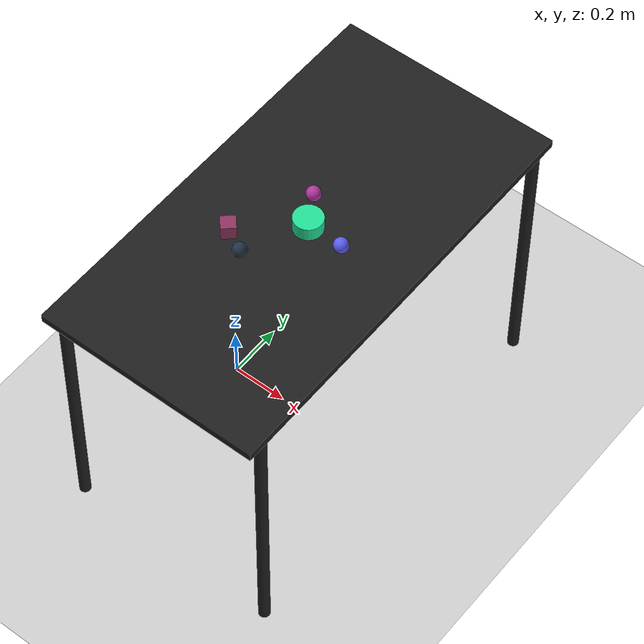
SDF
<?xml version="1.0" ?>
<sdf version="1.6">
  <world name="arm_world">
    <plugin filename="gz-sim-physics-system" name="gz::sim::systems::Physics">
      <engine>
        <filename>libgz-physics-bullet-featherstone-plugin.so</filename>
      </engine>
    </plugin>
    <plugin filename="gz-sim-user-commands-system" name="gz::sim::systems::UserCommands"/>
    <plugin filename="gz-sim-scene-broadcaster-system" name="gz::sim::systems::SceneBroadcaster"/>
    <plugin filename="gz-sim-sensors-system" name="gz::sim::systems::Sensors">
      <render_engine>ogre2</render_engine>
    </plugin>
    <gravity>0.0 0.0 -9.8</gravity>
    <scene>
      <shadows>false</shadows>
    </scene>
    <gui>
      <camera name="user_camera">
        <pose>0.75 -0.75 1.4 0 0.29 2.21</pose>
      </camera>
    </gui>
    <include>
      <uri>https://fuel.gazebosim.org/1.0/OpenRobotics/models/Sun</uri>
    </include>
    <model name="table">
      <static>true</static>
      <include>
        <uri>model://table</uri>
      </include>
      <pose>0.29 0 0 0 0 1.5708</pose>
    </model>
    <model name="ground_plane">
      <static>true</static>
      <link name="link">
        <collision name="collision">
          <geometry>
            <plane>
              <normal>0 0 1</normal>
            </plane>
          </geometry>
          <surface>
            <friction>
              <ode>
                <mu>1.0</mu>
                <mu2>1.0</mu2>
              </ode>
            </friction>
          </surface>
        </collision>
        <visual name="visual">
          <geometry>
            <plane>
              <normal>0 0 1</normal>
              <size>100 100</size>
            </plane>
          </geometry>
          <material>
            <ambient>0.8 0.8 0.8 1</ambient>
            <diffuse>0.8 0.8 0.8 1</diffuse>
            <specular>0.8 0.8 0.8 1</specular>
          </material>
        </visual>
      </link>
    </model>
    <model name="sphere_m_0">
      <pose>0.214 -0.213 1.05 0 0 3.78</pose>
      <link name="sphere_m_0_link">
        <inertial>
          <mass>0.05</mass>
          <inertia>
            <ixx>2.04e-7</ixx>
            <iyy>2.04e-7</iyy>
            <izz>3.9e-8</izz>
            <ixy>0</ixy>
            <ixz>0</ixz>
            <iyz>0</iyz>
          </inertia>
        </inertial>
        <collision name="sphere_m_0_collision">
          <geometry>
            <sphere>
              <radius>0.025</radius>
            </sphere>
          </geometry>
          <surface>
            <friction>
              <ode>
                <mu>0.8</mu>
                <mu2>0.8</mu2>
                <fdir1>0 0 1</fdir1>
                <slip1>0.001</slip1>
                <slip2>0.001</slip2>
              </ode>
              <torsional>
                <coefficient>0.1</coefficient>
                <surface_radius>0.015</surface_radius>
                <use_patch_radius>true</use_patch_radius>
              </torsional>
            </friction>
            <contact>
              <ode>
                <kp>1e5</kp>
                <kd>10</kd>
                <max_vel>0.1</max_vel>
                <min_depth>0.001</min_depth>
                <soft_cfm>0.01</soft_cfm>
                <soft_erp>0.2</soft_erp>
              </ode>
            </contact>
            <bounce>
              <restitution_coefficient>0.2</restitution_coefficient>
              <threshold>0.01</threshold>
            </bounce>
          </surface>
        </collision>
        <visual name="sphere_m_0_visual">
          <geometry>
            <sphere>
              <radius>0.025</radius>
            </sphere>
          </geometry>
          <material>
            <ambient>0.13 0.19 0.27 1</ambient>
            <diffuse>0.13 0.19 0.27 1</diffuse>
          </material>
        </visual>
        <velocity_decay>
          <linear>1</linear>
          <angular>1</angular>
        </velocity_decay>
      </link>
    </model>
    <model name="sphere_m_1">
      <pose>0.254 0.096 1.05 0 0 3.85</pose>
      <link name="sphere_m_1_link">
        <inertial>
          <mass>0.05</mass>
          <inertia>
            <ixx>2.04e-7</ixx>
            <iyy>2.04e-7</iyy>
            <izz>3.9e-8</izz>
            <ixy>0</ixy>
            <ixz>0</ixz>
            <iyz>0</iyz>
          </inertia>
        </inertial>
        <collision name="sphere_m_1_collision">
          <geometry>
            <sphere>
              <radius>0.025</radius>
            </sphere>
          </geometry>
          <surface>
            <friction>
              <ode>
                <mu>0.8</mu>
                <mu2>0.8</mu2>
                <fdir1>0 0 1</fdir1>
                <slip1>0.001</slip1>
                <slip2>0.001</slip2>
              </ode>
              <torsional>
                <coefficient>0.1</coefficient>
                <surface_radius>0.015</surface_radius>
                <use_patch_radius>true</use_patch_radius>
              </torsional>
            </friction>
            <contact>
              <ode>
                <kp>1e5</kp>
                <kd>10</kd>
                <max_vel>0.1</max_vel>
                <min_depth>0.001</min_depth>
                <soft_cfm>0.01</soft_cfm>
                <soft_erp>0.2</soft_erp>
              </ode>
            </contact>
            <bounce>
              <restitution_coefficient>0.2</restitution_coefficient>
              <threshold>0.01</threshold>
            </bounce>
          </surface>
        </collision>
        <visual name="sphere_m_1_visual">
          <geometry>
            <sphere>
              <radius>0.025</radius>
            </sphere>
          </geometry>
          <material>
            <ambient>0.69 0.21 0.62 1</ambient>
            <diffuse>0.69 0.21 0.62 1</diffuse>
          </material>
        </visual>
        <velocity_decay>
          <linear>1</linear>
          <angular>1</angular>
        </velocity_decay>
      </link>
    </model>
    <model name="cube_m_2">
      <pose>0.132 -0.168 1.05 0 0 2.3</pose>
      <link name="cube_m_2_link">
        <inertial>
          <mass>0.05</mass>
          <inertia>
            <ixx>2.04e-7</ixx>
            <iyy>2.04e-7</iyy>
            <izz>3.9e-8</izz>
            <ixy>0</ixy>
            <ixz>0</ixz>
            <iyz>0</iyz>
          </inertia>
        </inertial>
        <collision name="cube_m_2_collision">
          <geometry>
            <box>
              <size>0.05 0.05 0.05</size>
            </box>
          </geometry>
          <surface>
            <friction>
              <ode>
                <mu>0.8</mu>
                <mu2>0.8</mu2>
                <fdir1>0 0 1</fdir1>
                <slip1>0.001</slip1>
                <slip2>0.001</slip2>
              </ode>
              <torsional>
                <coefficient>0.1</coefficient>
                <surface_radius>0.015</surface_radius>
                <use_patch_radius>true</use_patch_radius>
              </torsional>
            </friction>
            <contact>
              <ode>
                <kp>1e5</kp>
                <kd>10</kd>
                <max_vel>0.1</max_vel>
                <min_depth>0.001</min_depth>
                <soft_cfm>0.01</soft_cfm>
                <soft_erp>0.2</soft_erp>
              </ode>
            </contact>
            <bounce>
              <restitution_coefficient>0.2</restitution_coefficient>
              <threshold>0.01</threshold>
            </bounce>
          </surface>
        </collision>
        <visual name="cube_m_2_visual">
          <geometry>
            <box>
              <size>0.05 0.05 0.05</size>
            </box>
          </geometry>
          <material>
            <ambient>0.56 0.2 0.37 1</ambient>
            <diffuse>0.56 0.2 0.37 1</diffuse>
          </material>
        </visual>
        <velocity_decay>
          <linear>1</linear>
          <angular>1</angular>
        </velocity_decay>
      </link>
    </model>
    <model name="sphere_m_3">
      <pose>0.443 -0.01 1.05 0 0 5.93</pose>
      <link name="sphere_m_3_link">
        <inertial>
          <mass>0.05</mass>
          <inertia>
            <ixx>2.04e-7</ixx>
            <iyy>2.04e-7</iyy>
            <izz>3.9e-8</izz>
            <ixy>0</ixy>
            <ixz>0</ixz>
            <iyz>0</iyz>
          </inertia>
        </inertial>
        <collision name="sphere_m_3_collision">
          <geometry>
            <sphere>
              <radius>0.025</radius>
            </sphere>
          </geometry>
          <surface>
            <friction>
              <ode>
                <mu>0.8</mu>
                <mu2>0.8</mu2>
                <fdir1>0 0 1</fdir1>
                <slip1>0.001</slip1>
                <slip2>0.001</slip2>
              </ode>
              <torsional>
                <coefficient>0.1</coefficient>
                <surface_radius>0.015</surface_radius>
                <use_patch_radius>true</use_patch_radius>
              </torsional>
            </friction>
            <contact>
              <ode>
                <kp>1e5</kp>
                <kd>10</kd>
                <max_vel>0.1</max_vel>
                <min_depth>0.001</min_depth>
                <soft_cfm>0.01</soft_cfm>
                <soft_erp>0.2</soft_erp>
              </ode>
            </contact>
            <bounce>
              <restitution_coefficient>0.2</restitution_coefficient>
              <threshold>0.01</threshold>
            </bounce>
          </surface>
        </collision>
        <visual name="sphere_m_3_visual">
          <geometry>
            <sphere>
              <radius>0.025</radius>
            </sphere>
          </geometry>
          <material>
            <ambient>0.36 0.37 0.96 1</ambient>
            <diffuse>0.36 0.37 0.96 1</diffuse>
          </material>
        </visual>
        <velocity_decay>
          <linear>1</linear>
          <angular>1</angular>
        </velocity_decay>
      </link>
    </model>
    <model name="cylinder_l_4">
      <pose>0.311 -0.003 1.05 0 0 6.2</pose>
      <link name="cylinder_l_4_link">
        <inertial>
          <mass>0.05</mass>
          <inertia>
            <ixx>2.04e-7</ixx>
            <iyy>2.04e-7</iyy>
            <izz>3.9e-8</izz>
            <ixy>0</ixy>
            <ixz>0</ixz>
            <iyz>0</iyz>
          </inertia>
        </inertial>
        <collision name="cylinder_l_4_collision">
          <geometry>
            <cylinder>
              <radius>0.05</radius>
              <length>0.05</length>
            </cylinder>
          </geometry>
          <surface>
            <friction>
              <ode>
                <mu>0.8</mu>
                <mu2>0.8</mu2>
                <fdir1>0 0 1</fdir1>
                <slip1>0.001</slip1>
                <slip2>0.001</slip2>
              </ode>
              <torsional>
                <coefficient>0.1</coefficient>
                <surface_radius>0.015</surface_radius>
                <use_patch_radius>true</use_patch_radius>
              </torsional>
            </friction>
            <contact>
              <ode>
                <kp>1e5</kp>
                <kd>10</kd>
                <max_vel>0.1</max_vel>
                <min_depth>0.001</min_depth>
                <soft_cfm>0.01</soft_cfm>
                <soft_erp>0.2</soft_erp>
              </ode>
            </contact>
            <bounce>
              <restitution_coefficient>0.2</restitution_coefficient>
              <threshold>0.01</threshold>
            </bounce>
          </surface>
        </collision>
        <visual name="cylinder_l_4_visual">
          <geometry>
            <cylinder>
              <radius>0.05</radius>
              <length>0.05</length>
            </cylinder>
          </geometry>
          <material>
            <ambient>0.13 0.87 0.59 1</ambient>
            <diffuse>0.13 0.87 0.59 1</diffuse>
          </material>
        </visual>
        <velocity_decay>
          <linear>1</linear>
          <angular>1</angular>
        </velocity_decay>
      </link>
    </model>
  </world>
</sdf>

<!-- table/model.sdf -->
<sdf version="1.5">
  <model name="table">
    <static>true</static>
    <link name="link">
      <collision name="surface">
        <pose>0 0 1.0 0 0 0</pose>
        <geometry>
          <box>
            <size>1.5 0.8 0.03</size>
          </box>
        </geometry>
        <surface>
          <friction>
            <ode>
              <mu>0.6</mu>
              <mu2>0.6</mu2>
            </ode>
          </friction>
        </surface>
      </collision>
      <visual name="surface">
        <pose>0 0 1.0 0 0 0</pose>
        <geometry>
          <box>
            <size>1.5 0.8 0.03</size>
          </box>
        </geometry>
        <material>
          <script>
            <uri>file://media/materials/scripts/gazebo.material</uri>
            <name>Gazebo/Black</name>
          </script>
        </material>
      </visual>
      <collision name="front_left_leg">
        <pose>0.68 0.38 0.5 0 0 0</pose>
        <geometry>
          <cylinder>
            <radius>0.02</radius>
            <length>1.0</length>
          </cylinder>
        </geometry>
      </collision>
      <visual name="front_left_leg">
        <pose>0.68 0.38 0.5 0 0 0</pose>
        <geometry>
          <cylinder>
            <radius>0.02</radius>
            <length>1.0</length>
          </cylinder>
        </geometry>
        <material>
          <script>
            <uri>file://media/materials/scripts/gazebo.material</uri>
            <name>Gazebo/Black</name>
          </script>
        </material>
      </visual>
      <collision name="front_right_leg">
        <pose>0.68 -0.38 0.5 0 0 0</pose>
        <geometry>
          <cylinder>
            <radius>0.02</radius>
            <length>1.0</length>
          </cylinder>
        </geometry>
      </collision>
      <visual name="front_right_leg">
        <pose>0.68 -0.38 0.5 0 0 0</pose>
        <geometry>
          <cylinder>
            <radius>0.02</radius>
            <length>1.0</length>
          </cylinder>
        </geometry>
        <material>
          <script>
            <uri>file://media/materials/scripts/gazebo.material</uri>
            <name>Gazebo/Black</name>
          </script>
        </material>
      </visual>
      <collision name="back_right_leg">
        <pose>-0.68 -0.38 0.5 0 0 0</pose>
        <geometry>
          <cylinder>
            <radius>0.02</radius>
            <length>1.0</length>
          </cylinder>
        </geometry>
      </collision>
      <visual name="back_right_leg">
        <pose>-0.68 -0.38 0.5 0 0 0</pose>
        <geometry>
          <cylinder>
            <radius>0.02</radius>
            <length>1.0</length>
          </cylinder>
        </geometry>
        <material>
          <script>
            <uri>file://media/materials/scripts/gazebo.material</uri>
            <name>Gazebo/Black</name>
          </script>
        </material>
      </visual>
      <collision name="back_left_leg">
        <pose>-0.68 0.38 0.5 0 0 0</pose>
        <geometry>
          <cylinder>
            <radius>0.02</radius>
            <length>1.0</length>
          </cylinder>
        </geometry>
      </collision>
      <visual name="back_left_leg">
        <pose>-0.68 0.38 0.5 0 0 0</pose>
        <geometry>
          <cylinder>
            <radius>0.02</radius>
            <length>1.0</length>
          </cylinder>
        </geometry>
        <material>
          <script>
            <uri>file://media/materials/scripts/gazebo.material</uri>
            <name>Gazebo/Black</name>
          </script>
        </material>
      </visual>
    </link>
  </model>
</sdf>
